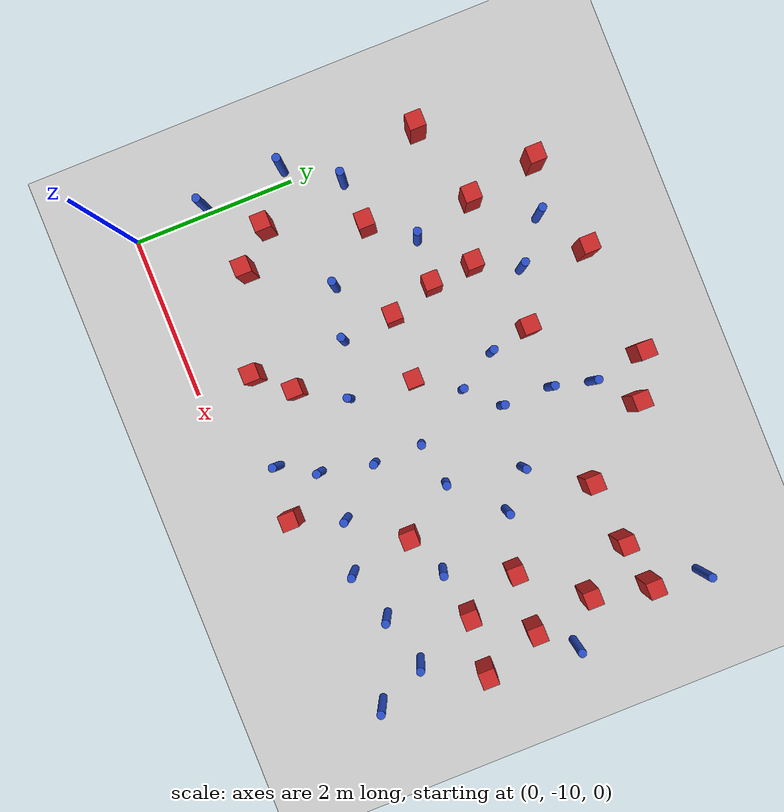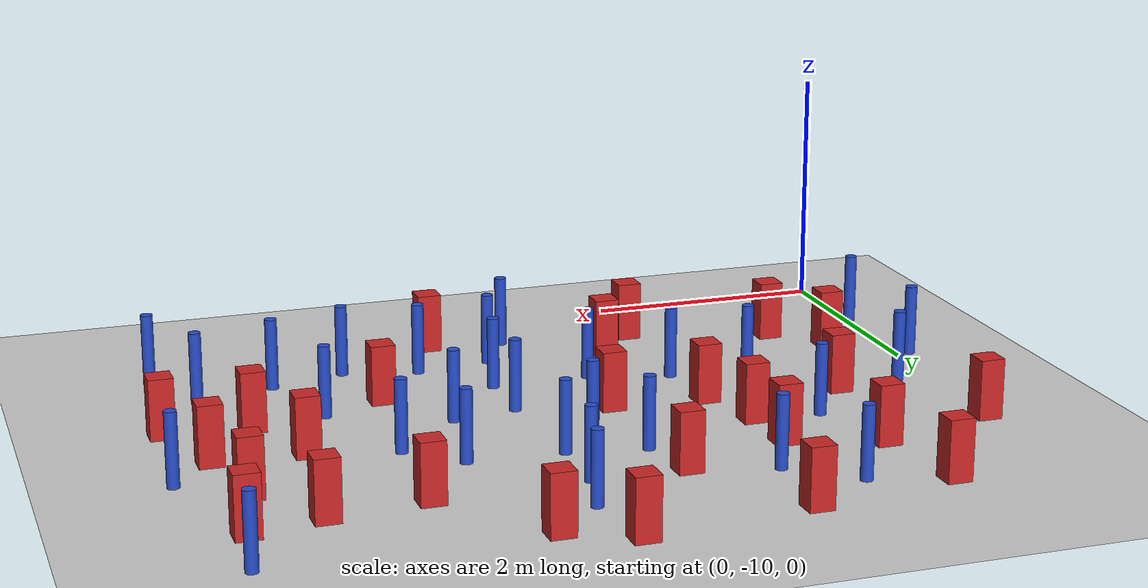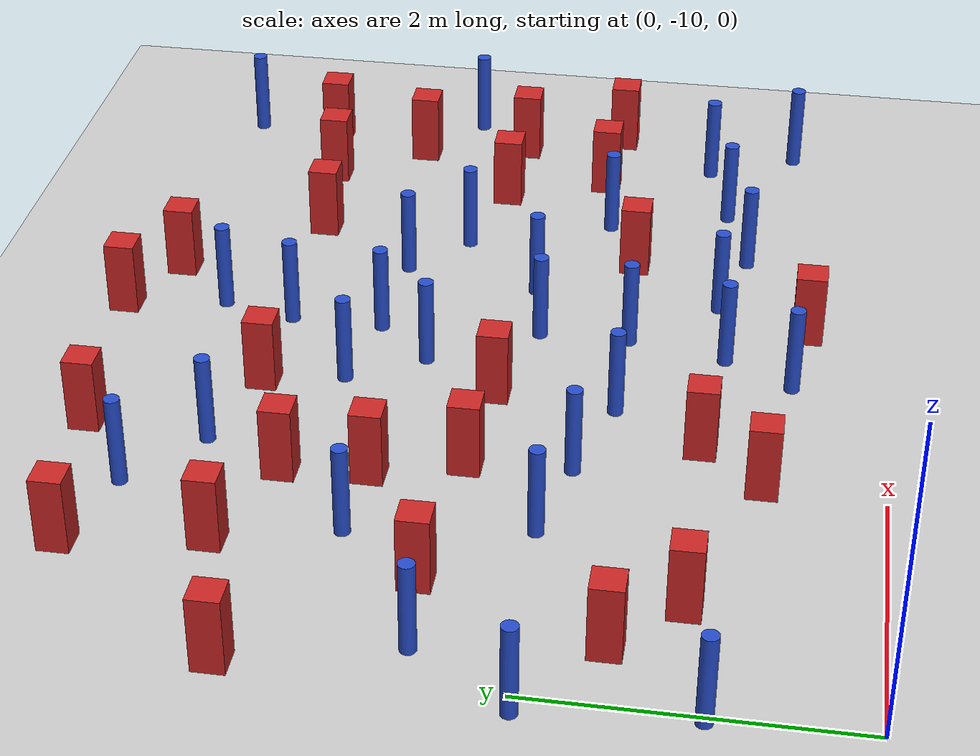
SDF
<sdf version="1.6">
 <world name="default">
  <model name="ground_plane">
   <static>1</static>
   <link name="link">
    <collision name="collision">
     <geometry><plane><normal>0 0 1</normal><size>100 100</size></plane></geometry>
     <surface><friction><ode><mu>100</mu><mu2>50</mu2></ode></friction></surface>
    </collision>
    <visual name="visual">
     <cast_shadows>0</cast_shadows>
     <geometry><plane><normal>0 0 1</normal><size>100 100</size></plane></geometry>
     <material>
      <ambient>1.0 1.0 1.0 1.0</ambient>
      <diffuse>0.8 0.8 0.8 1.0</diffuse>
      <specular>0.01 0.01 0.01 1.000000</specular>
     </material>
    </visual>
   </link>
  </model>
  <model name="pole_obstacle1">
   <static>true</static>
   <pose>4.07236167982 -7.60996709356 -3.09024884793e-07 -7.19054271911e-07 -2.1131507516e-07 -1.93935509277e-07</pose>
   <link name="link">
    <pose>0 0 0.3 0 -0 0</pose>
    <inertial>
     <mass>1</mass>
     <inertia><ixx>0.145833</ixx><ixy>0</ixy><ixz>0</ixz><iyy>0.145833</iyy><iyz>0</iyz><izz>0.125</izz></inertia>
    </inertial>
    <collision name="collision">
     <geometry><cylinder><radius>0.05</radius><length>.6</length></cylinder></geometry>
    </collision>
    <visual name="visual">
     <geometry><cylinder><radius>0.05</radius><length>.6</length></cylinder></geometry>
     <material>
      <script><name>Gazebo/Blue</name><uri>file://media/materials/scripts/gazebo.material</uri></script>
     </material>
    </visual>
   </link>
  </model>
  <model name="square_post_obstacle1">
   <static>true</static>
   <pose>5.92085016042 -6.52484385596 -4.36207812815e-07 3.75137919937e-06 9.77721102514e-07 2.47381364184e-05</pose>
   <link name="link">
    <pose>0 0 0.25 0 -0 0</pose>
    <inertial>
     <mass>100</mass>
     <inertia>
      <ixx>0.166667</ixx>
      <ixy>0</ixy>
      <ixz>0</ixz>
      <iyy>0.166667</iyy>
      <iyz>0</iyz>
      <izz>0.166667</izz>
     </inertia>
    </inertial>
    <collision name="collision"><geometry><box><size>.2 .2 .5</size></box></geometry></collision>
    <visual name="visual">
     <geometry><box><size>.2 .2 .5</size></box></geometry>
     <material>
      <script><name>Gazebo/Red</name><uri>file://media/materials/scripts/gazebo.material</uri></script>
     </material>
    </visual>
   </link>
  </model>
  <model name="square_post_obstacle10">
   <static>true</static>
   <pose>5.62573239196 -7.92361459516 -4.36207812815e-07 3.75137919937e-06 9.77721102514e-07 2.47381364184e-05</pose>
   <link name="link">
    <pose>0 0 0.25 0 -0 0</pose>
    <inertial>
     <mass>100</mass>
     <inertia>
      <ixx>0.166667</ixx>
      <ixy>0</ixy>
      <ixz>0</ixz>
      <iyy>0.166667</iyy>
      <iyz>0</iyz>
      <izz>0.166667</izz>
     </inertia>
    </inertial>
    <collision name="collision"><geometry><box><size>.2 .2 .5</size></box></geometry></collision>
    <visual name="visual">
     <geometry><box><size>.2 .2 .5</size></box></geometry>
     <material>
      <script><name>Gazebo/Red</name><uri>file://media/materials/scripts/gazebo.material</uri></script>
     </material>
    </visual>
   </link>
  </model>
  <model name="pole_obstacle16">
   <static>true</static>
   <pose>1.25238944474 -6.84796622527 -3.09024884793e-07 -7.19054271912e-07 -2.11315075134e-07 -1.93935509265e-07</pose>
   <link name="link">
    <pose>0 0 0.3 0 -0 0</pose>
    <inertial>
     <mass>1</mass>
     <inertia><ixx>0.145833</ixx><ixy>0</ixy><ixz>0</ixz><iyy>0.145833</iyy><iyz>0</iyz><izz>0.125</izz></inertia>
    </inertial>
    <collision name="collision">
     <geometry><cylinder><radius>0.05</radius><length>.6</length></cylinder></geometry>
    </collision>
    <visual name="visual">
     <geometry><cylinder><radius>0.05</radius><length>.6</length></cylinder></geometry>
     <material>
      <script><name>Gazebo/Blue</name><uri>file://media/materials/scripts/gazebo.material</uri></script>
     </material>
    </visual>
   </link>
  </model>
  <model name="pole_obstacle26">
   <static>true</static>
   <pose>1.41979957354 -7.96618892146 -3.09024884793e-07 -7.19054271912e-07 -2.11315075145e-07 -1.9393550927e-07</pose>
   <link name="link">
    <pose>0 0 0.3 0 -0 0</pose>
    <inertial>
     <mass>1</mass>
     <inertia><ixx>0.145833</ixx><ixy>0</ixy><ixz>0</ixz><iyy>0.145833</iyy><iyz>0</iyz><izz>0.125</izz></inertia>
    </inertial>
    <collision name="collision">
     <geometry><cylinder><radius>0.05</radius><length>.6</length></cylinder></geometry>
    </collision>
    <visual name="visual">
     <geometry><cylinder><radius>0.05</radius><length>.6</length></cylinder></geometry>
     <material>
      <script><name>Gazebo/Blue</name><uri>file://media/materials/scripts/gazebo.material</uri></script>
     </material>
    </visual>
   </link>
  </model>
  <model name="square_post_obstacle21">
   <static>true</static>
   <pose>0.453785921424 -8.48152382366 -4.36207812815e-07 3.75137919937e-06 9.77721102514e-07 2.47381364184e-05</pose>
   <link name="link">
    <pose>0 0 0.25 0 -0 0</pose>
    <inertial>
     <mass>100</mass>
     <inertia>
      <ixx>0.166667</ixx>
      <ixy>0</ixy>
      <ixz>0</ixz>
      <iyy>0.166667</iyy>
      <iyz>0</iyz>
      <izz>0.166667</izz>
     </inertia>
    </inertial>
    <collision name="collision"><geometry><box><size>.2 .2 .5</size></box></geometry></collision>
    <visual name="visual">
     <geometry><box><size>.2 .2 .5</size></box></geometry>
     <material>
      <script><name>Gazebo/Red</name><uri>file://media/materials/scripts/gazebo.material</uri></script>
     </material>
    </visual>
   </link>
  </model>
  <model name="pole_obstacle30">
   <static>true</static>
   <pose>3.5400700986 -8.29917284744 -3.09024884848e-07 -7.19054271902e-07 -2.11315075199e-07 -1.93935509286e-07</pose>
   <link name="link">
    <pose>0 0 0.3 0 -0 0</pose>
    <inertial>
     <mass>1</mass>
     <inertia><ixx>0.145833</ixx><ixy>0</ixy><ixz>0</ixz><iyy>0.145833</iyy><iyz>0</iyz><izz>0.125</izz></inertia>
    </inertial>
    <collision name="collision">
     <geometry><cylinder><radius>0.05</radius><length>.6</length></cylinder></geometry>
    </collision>
    <visual name="visual">
     <geometry><cylinder><radius>0.05</radius><length>.6</length></cylinder></geometry>
     <material>
      <script><name>Gazebo/Blue</name><uri>file://media/materials/scripts/gazebo.material</uri></script>
     </material>
    </visual>
   </link>
  </model>
  <model name="square_post_obstacle27">
   <static>true</static>
   <pose>6.07631170393 -7.27511458548 -4.36207812815e-07 3.75137919937e-06 9.77721102514e-07 2.47381364184e-05</pose>
   <link name="link">
    <pose>0 0 0.25 0 -0 0</pose>
    <inertial>
     <mass>100</mass>
     <inertia>
      <ixx>0.166667</ixx>
      <ixy>0</ixy>
      <ixz>0</ixz>
      <iyy>0.166667</iyy>
      <iyz>0</iyz>
      <izz>0.166667</izz>
     </inertia>
    </inertial>
    <collision name="collision"><geometry><box><size>.2 .2 .5</size></box></geometry></collision>
    <visual name="visual">
     <geometry><box><size>.2 .2 .5</size></box></geometry>
     <material>
      <script><name>Gazebo/Red</name><uri>file://media/materials/scripts/gazebo.material</uri></script>
     </material>
    </visual>
   </link>
  </model>
  <model name="pole_obstacle33">
   <static>true</static>
   <pose>2.72047921915 -8.29536305669 -3.09024884848e-07 -7.19054271902e-07 -2.11315075199e-07 -1.93935509286e-07</pose>
   <link name="link">
    <pose>0 0 0.3 0 -0 0</pose>
    <inertial>
     <mass>1</mass>
     <inertia><ixx>0.145833</ixx><ixy>0</ixy><ixz>0</ixz><iyy>0.145833</iyy><iyz>0</iyz><izz>0.125</izz></inertia>
    </inertial>
    <collision name="collision">
     <geometry><cylinder><radius>0.05</radius><length>.6</length></cylinder></geometry>
    </collision>
    <visual name="visual">
     <geometry><cylinder><radius>0.05</radius><length>.6</length></cylinder></geometry>
     <material>
      <script><name>Gazebo/Blue</name><uri>file://media/materials/scripts/gazebo.material</uri></script>
     </material>
    </visual>
   </link>
  </model>
  <model name="pole_obstacle48">
   <static>true</static>
   <pose>0.290148345663 -7.41750227687 -3.09024884793e-07 -7.19054271912e-07 -2.11315075127e-07 -1.9393550926e-07</pose>
   <link name="link">
    <pose>0 0 0.3 0 -0 0</pose>
    <inertial>
     <mass>1</mass>
     <inertia><ixx>0.145833</ixx><ixy>0</ixy><ixz>0</ixz><iyy>0.145833</iyy><iyz>0</iyz><izz>0.125</izz></inertia>
    </inertial>
    <collision name="collision">
     <geometry><cylinder><radius>0.05</radius><length>.6</length></cylinder></geometry>
    </collision>
    <visual name="visual">
     <geometry><cylinder><radius>0.05</radius><length>.6</length></cylinder></geometry>
     <material>
      <script><name>Gazebo/Blue</name><uri>file://media/materials/scripts/gazebo.material</uri></script>
     </material>
    </visual>
   </link>
  </model>
  <model name="square_post_obstacle38">
   <static>true</static>
   <pose>4.0068190021 -5.15003633748 -4.36207812815e-07 3.75137919937e-06 9.77721102514e-07 2.47381364184e-05</pose>
   <link name="link">
    <pose>0 0 0.25 0 -0 0</pose>
    <inertial>
     <mass>100</mass>
     <inertia>
      <ixx>0.166667</ixx>
      <ixy>0</ixy>
      <ixz>0</ixz>
      <iyy>0.166667</iyy>
      <iyz>0</iyz>
      <izz>0.166667</izz>
     </inertia>
    </inertial>
    <collision name="collision"><geometry><box><size>.2 .2 .5</size></box></geometry></collision>
    <visual name="visual">
     <geometry><box><size>.2 .2 .5</size></box></geometry>
     <material>
      <script><name>Gazebo/Red</name><uri>file://media/materials/scripts/gazebo.material</uri></script>
     </material>
    </visual>
   </link>
  </model>
  <model name="pole_obstacle54">
   <static>true</static>
   <pose>5.27710868921 -8.84113022269 -3.09024884793e-07 -7.19054271912e-07 -2.1131507513e-07 -1.93935509261e-07</pose>
   <link name="link">
    <pose>0 0 0.3 0 -0 0</pose>
    <inertial>
     <mass>1</mass>
     <inertia><ixx>0.145833</ixx><ixy>0</ixy><ixz>0</ixz><iyy>0.145833</iyy><iyz>0</iyz><izz>0.125</izz></inertia>
    </inertial>
    <collision name="collision">
     <geometry><cylinder><radius>0.05</radius><length>.6</length></cylinder></geometry>
    </collision>
    <visual name="visual">
     <geometry><cylinder><radius>0.05</radius><length>.6</length></cylinder></geometry>
     <material>
      <script><name>Gazebo/Blue</name><uri>file://media/materials/scripts/gazebo.material</uri></script>
     </material>
    </visual>
   </link>
  </model>
  <model name="pole_obstacle58">
   <static>true</static>
   <pose>2.03165217298 -5.83200984251 -3.09024884793e-07 -7.19054271912e-07 -2.11315075136e-07 -1.93935509266e-07</pose>
   <link name="link">
    <pose>0 0 0.3 0 -0 0</pose>
    <inertial>
     <mass>1</mass>
     <inertia><ixx>0.145833</ixx><ixy>0</ixy><ixz>0</ixz><iyy>0.145833</iyy><iyz>0</iyz><izz>0.125</izz></inertia>
    </inertial>
    <collision name="collision">
     <geometry><cylinder><radius>0.05</radius><length>.6</length></cylinder></geometry>
    </collision>
    <visual name="visual">
     <geometry><cylinder><radius>0.05</radius><length>.6</length></cylinder></geometry>
     <material>
      <script><name>Gazebo/Blue</name><uri>file://media/materials/scripts/gazebo.material</uri></script>
     </material>
    </visual>
   </link>
  </model>
  <model name="square_post_obstacle46">
   <static>true</static>
   <pose>4.50490075316 -8.24448174839 -4.36207812815e-07 3.75137919937e-06 9.77721102514e-07 2.47381364184e-05</pose>
   <link name="link">
    <pose>0 0 0.25 0 -0 0</pose>
    <inertial>
     <mass>100</mass>
     <inertia>
      <ixx>0.166667</ixx>
      <ixy>0</ixy>
      <ixz>0</ixz>
      <iyy>0.166667</iyy>
      <iyz>0</iyz>
      <izz>0.166667</izz>
     </inertia>
    </inertial>
    <collision name="collision"><geometry><box><size>.2 .2 .5</size></box></geometry></collision>
    <visual name="visual">
     <geometry><box><size>.2 .2 .5</size></box></geometry>
     <material>
      <script><name>Gazebo/Red</name><uri>file://media/materials/scripts/gazebo.material</uri></script>
     </material>
    </visual>
   </link>
  </model>
  <model name="pole_obstacle66">
   <static>true</static>
   <pose>5.01758868013 -8.02447700649 -3.09024884793e-07 -7.19054271911e-07 -2.11315075165e-07 -1.93935509282e-07</pose>
   <link name="link">
    <pose>0 0 0.3 0 -0 0</pose>
    <inertial>
     <mass>1</mass>
     <inertia><ixx>0.145833</ixx><ixy>0</ixy><ixz>0</ixz><iyy>0.145833</iyy><iyz>0</iyz><izz>0.125</izz></inertia>
    </inertial>
    <collision name="collision">
     <geometry><cylinder><radius>0.05</radius><length>.6</length></cylinder></geometry>
    </collision>
    <visual name="visual">
     <geometry><cylinder><radius>0.05</radius><length>.6</length></cylinder></geometry>
     <material>
      <script><name>Gazebo/Blue</name><uri>file://media/materials/scripts/gazebo.material</uri></script>
     </material>
    </visual>
   </link>
  </model>
  <model name="square_post_obstacle58">
   <static>true</static>
   <pose>5.4955206383 -5.91782585349 -4.36207812815e-07 3.75137919937e-06 9.77721102514e-07 2.47381364184e-05</pose>
   <link name="link">
    <pose>0 0 0.25 0 -0 0</pose>
    <inertial>
     <mass>100</mass>
     <inertia>
      <ixx>0.166667</ixx>
      <ixy>0</ixy>
      <ixz>0</ixz>
      <iyy>0.166667</iyy>
      <iyz>0</iyz>
      <izz>0.166667</izz>
     </inertia>
    </inertial>
    <collision name="collision"><geometry><box><size>.2 .2 .5</size></box></geometry></collision>
    <visual name="visual">
     <geometry><box><size>.2 .2 .5</size></box></geometry>
     <material>
      <script><name>Gazebo/Red</name><uri>file://media/materials/scripts/gazebo.material</uri></script>
     </material>
    </visual>
   </link>
  </model>
  <model name="square_post_obstacle60">
   <static>true</static>
   <pose>1.77459397699 -6.35679622717 -4.36207812815e-07 3.75137919937e-06 9.77721102514e-07 2.47381364184e-05</pose>
   <link name="link">
    <pose>0 0 0.25 0 -0 0</pose>
    <inertial>
     <mass>100</mass>
     <inertia>
      <ixx>0.166667</ixx>
      <ixy>0</ixy>
      <ixz>0</ixz>
      <iyy>0.166667</iyy>
      <iyz>0</iyz>
      <izz>0.166667</izz>
     </inertia>
    </inertial>
    <collision name="collision"><geometry><box><size>.2 .2 .5</size></box></geometry></collision>
    <visual name="visual">
     <geometry><box><size>.2 .2 .5</size></box></geometry>
     <material>
      <script><name>Gazebo/Red</name><uri>file://media/materials/scripts/gazebo.material</uri></script>
     </material>
    </visual>
   </link>
  </model>
  <model name="square_post_obstacle61">
   <static>true</static>
   <pose>5.34309120181 -7.23622788586 -4.36207812815e-07 3.75137919937e-06 9.77721102514e-07 2.47381364184e-05</pose>
   <link name="link">
    <pose>0 0 0.25 0 -0 0</pose>
    <inertial>
     <mass>100</mass>
     <inertia>
      <ixx>0.166667</ixx>
      <ixy>0</ixy>
      <ixz>0</ixz>
      <iyy>0.166667</iyy>
      <iyz>0</iyz>
      <izz>0.166667</izz>
     </inertia>
    </inertial>
    <collision name="collision"><geometry><box><size>.2 .2 .5</size></box></geometry></collision>
    <visual name="visual">
     <geometry><box><size>.2 .2 .5</size></box></geometry>
     <material>
      <script><name>Gazebo/Red</name><uri>file://media/materials/scripts/gazebo.material</uri></script>
     </material>
    </visual>
   </link>
  </model>
  <model name="pole_obstacle71">
   <static>true</static>
   <pose>2.05240062635 -8.10532833255 -3.09024884848e-07 -7.19054271902e-07 -2.11315075199e-07 -1.93935509286e-07</pose>
   <link name="link">
    <pose>0 0 0.3 0 -0 0</pose>
    <inertial>
     <mass>1</mass>
     <inertia><ixx>0.145833</ixx><ixy>0</ixy><ixz>0</ixz><iyy>0.145833</iyy><iyz>0</iyz><izz>0.125</izz></inertia>
    </inertial>
    <collision name="collision">
     <geometry><cylinder><radius>0.05</radius><length>.6</length></cylinder></geometry>
    </collision>
    <visual name="visual">
     <geometry><cylinder><radius>0.05</radius><length>.6</length></cylinder></geometry>
     <material>
      <script><name>Gazebo/Blue</name><uri>file://media/materials/scripts/gazebo.material</uri></script>
     </material>
    </visual>
   </link>
  </model>
  <model name="pole_obstacle76">
   <static>true</static>
   <pose>6.41805864208 -6.88185859831 -3.09024884793e-07 -7.19054271911e-07 -2.1131507516e-07 -1.93935509277e-07</pose>
   <link name="link">
    <pose>0 0 0.3 0 -0 0</pose>
    <inertial>
     <mass>1</mass>
     <inertia><ixx>0.145833</ixx><ixy>0</ixy><ixz>0</ixz><iyy>0.145833</iyy><iyz>0</iyz><izz>0.125</izz></inertia>
    </inertial>
    <collision name="collision">
     <geometry><cylinder><radius>0.05</radius><length>.6</length></cylinder></geometry>
    </collision>
    <visual name="visual">
     <geometry><cylinder><radius>0.05</radius><length>.6</length></cylinder></geometry>
     <material>
      <script><name>Gazebo/Blue</name><uri>file://media/materials/scripts/gazebo.material</uri></script>
     </material>
    </visual>
   </link>
  </model>
  <model name="square_post_obstacle71">
   <static>true</static>
   <pose>2.09622969904 -5.04232906579 -4.36207812815e-07 3.75137919937e-06 9.77721102514e-07 2.47381364184e-05</pose>
   <link name="link">
    <pose>0 0 0.25 0 -0 0</pose>
    <inertial>
     <mass>100</mass>
     <inertia>
      <ixx>0.166667</ixx>
      <ixy>0</ixy>
      <ixz>0</ixz>
      <iyy>0.166667</iyy>
      <iyz>0</iyz>
      <izz>0.166667</izz>
     </inertia>
    </inertial>
    <collision name="collision"><geometry><box><size>.2 .2 .5</size></box></geometry></collision>
    <visual name="visual">
     <geometry><box><size>.2 .2 .5</size></box></geometry>
     <material>
      <script><name>Gazebo/Red</name><uri>file://media/materials/scripts/gazebo.material</uri></script>
     </material>
    </visual>
   </link>
  </model>
  <model name="pole_obstacle87">
   <static>true</static>
   <pose>1.52635843563 -5.4189483162 -3.09024884793e-07 -7.19054271912e-07 -2.11315075134e-07 -1.93935509265e-07</pose>
   <link name="link">
    <pose>0 0 0.3 0 -0 0</pose>
    <inertial>
     <mass>1</mass>
     <inertia><ixx>0.145833</ixx><ixy>0</ixy><ixz>0</ixz><iyy>0.145833</iyy><iyz>0</iyz><izz>0.125</izz></inertia>
    </inertial>
    <collision name="collision">
     <geometry><cylinder><radius>0.05</radius><length>.6</length></cylinder></geometry>
    </collision>
    <visual name="visual">
     <geometry><cylinder><radius>0.05</radius><length>.6</length></cylinder></geometry>
     <material>
      <script><name>Gazebo/Blue</name><uri>file://media/materials/scripts/gazebo.material</uri></script>
     </material>
    </visual>
   </link>
  </model>
  <model name="pole_obstacle90">
   <static>true</static>
   <pose>4.64386536042 -7.0594242343 -3.09024884793e-07 -7.19054271911e-07 -2.1131507516e-07 -1.93935509277e-07</pose>
   <link name="link">
    <pose>0 0 0.3 0 -0 0</pose>
    <inertial>
     <mass>1</mass>
     <inertia><ixx>0.145833</ixx><ixy>0</ixy><ixz>0</ixz><iyy>0.145833</iyy><iyz>0</iyz><izz>0.125</izz></inertia>
    </inertial>
    <collision name="collision">
     <geometry><cylinder><radius>0.05</radius><length>.6</length></cylinder></geometry>
    </collision>
    <visual name="visual">
     <geometry><cylinder><radius>0.05</radius><length>.6</length></cylinder></geometry>
     <material>
      <script><name>Gazebo/Blue</name><uri>file://media/materials/scripts/gazebo.material</uri></script>
     </material>
    </visual>
   </link>
  </model>
  <model name="square_post_obstacle86">
   <static>true</static>
   <pose>2.03636966007 -9.2489738448 -4.36207812815e-07 3.75137919937e-06 9.77721102514e-07 2.47381364184e-05</pose>
   <link name="link">
    <pose>0 0 0.25 0 -0 0</pose>
    <inertial>
     <mass>100</mass>
     <inertia>
      <ixx>0.166667</ixx>
      <ixy>0</ixy>
      <ixz>0</ixz>
      <iyy>0.166667</iyy>
      <iyz>0</iyz>
      <izz>0.166667</izz>
     </inertia>
    </inertial>
    <collision name="collision"><geometry><box><size>.2 .2 .5</size></box></geometry></collision>
    <visual name="visual">
     <geometry><box><size>.2 .2 .5</size></box></geometry>
     <material>
      <script><name>Gazebo/Red</name><uri>file://media/materials/scripts/gazebo.material</uri></script>
     </material>
    </visual>
   </link>
  </model>
  <model name="pole_obstacle94">
   <static>true</static>
   <pose>3.14695514007 -9.38417017222 -3.09024884848e-07 -7.19054271902e-07 -2.11315075199e-07 -1.93935509286e-07</pose>
   <link name="link">
    <pose>0 0 0.3 0 -0 0</pose>
    <inertial>
     <mass>1</mass>
     <inertia><ixx>0.145833</ixx><ixy>0</ixy><ixz>0</ixz><iyy>0.145833</iyy><iyz>0</iyz><izz>0.125</izz></inertia>
    </inertial>
    <collision name="collision">
     <geometry><cylinder><radius>0.05</radius><length>.6</length></cylinder></geometry>
    </collision>
    <visual name="visual">
     <geometry><cylinder><radius>0.05</radius><length>.6</length></cylinder></geometry>
     <material>
      <script><name>Gazebo/Blue</name><uri>file://media/materials/scripts/gazebo.material</uri></script>
     </material>
    </visual>
   </link>
  </model>
  <model name="square_post_obstacle87">
   <static>true</static>
   <pose>0.898441468223 -5.23451548411 -4.36207812815e-07 3.75137919937e-06 9.77721102514e-07 2.47381364184e-05</pose>
   <link name="link">
    <pose>0 0 0.25 0 -0 0</pose>
    <inertial>
     <mass>100</mass>
     <inertia>
      <ixx>0.166667</ixx>
      <ixy>0</ixy>
      <ixz>0</ixz>
      <iyy>0.166667</iyy>
      <iyz>0</iyz>
      <izz>0.166667</izz>
     </inertia>
    </inertial>
    <collision name="collision"><geometry><box><size>.2 .2 .5</size></box></geometry></collision>
    <visual name="visual">
     <geometry><box><size>.2 .2 .5</size></box></geometry>
     <material>
      <script><name>Gazebo/Red</name><uri>file://media/materials/scripts/gazebo.material</uri></script>
     </material>
    </visual>
   </link>
  </model>
  <model name="square_post_obstacle93">
   <static>true</static>
   <pose>3.78841018463 -9.46230485437 -4.36207812815e-07 3.75137919937e-06 9.77721102514e-07 2.47381364184e-05</pose>
   <link name="link">
    <pose>0 0 0.25 0 -0 0</pose>
    <inertial>
     <mass>100</mass>
     <inertia>
      <ixx>0.166667</ixx>
      <ixy>0</ixy>
      <ixz>0</ixz>
      <iyy>0.166667</iyy>
      <iyz>0</iyz>
      <izz>0.166667</izz>
     </inertia>
    </inertial>
    <collision name="collision"><geometry><box><size>.2 .2 .5</size></box></geometry></collision>
    <visual name="visual">
     <geometry><box><size>.2 .2 .5</size></box></geometry>
     <material>
      <script><name>Gazebo/Red</name><uri>file://media/materials/scripts/gazebo.material</uri></script>
     </material>
    </visual>
   </link>
  </model>
  <model name="square_post_obstacle94">
   <static>true</static>
   <pose>4.70166539826 -6.00847670656 -4.36207812815e-07 3.75137919937e-06 9.77721102514e-07 2.47381364184e-05</pose>
   <link name="link">
    <pose>0 0 0.25 0 -0 0</pose>
    <inertial>
     <mass>100</mass>
     <inertia>
      <ixx>0.166667</ixx>
      <ixy>0</ixy>
      <ixz>0</ixz>
      <iyy>0.166667</iyy>
      <iyz>0</iyz>
      <izz>0.166667</izz>
     </inertia>
    </inertial>
    <collision name="collision"><geometry><box><size>.2 .2 .5</size></box></geometry></collision>
    <visual name="visual">
     <geometry><box><size>.2 .2 .5</size></box></geometry>
     <material>
      <script><name>Gazebo/Red</name><uri>file://media/materials/scripts/gazebo.material</uri></script>
     </material>
    </visual>
   </link>
  </model>
  <model name="pole_obstacle103">
   <static>true</static>
   <pose>4.65061305243 -9.01366671301 -3.09024884793e-07 -7.19054271912e-07 -2.1131507513e-07 -1.93935509261e-07</pose>
   <link name="link">
    <pose>0 0 0.3 0 -0 0</pose>
    <inertial>
     <mass>1</mass>
     <inertia><ixx>0.145833</ixx><ixy>0</ixy><ixz>0</ixz><iyy>0.145833</iyy><iyz>0</iyz><izz>0.125</izz></inertia>
    </inertial>
    <collision name="collision">
     <geometry><cylinder><radius>0.05</radius><length>.6</length></cylinder></geometry>
    </collision>
    <visual name="visual">
     <geometry><cylinder><radius>0.05</radius><length>.6</length></cylinder></geometry>
     <material>
      <script><name>Gazebo/Blue</name><uri>file://media/materials/scripts/gazebo.material</uri></script>
     </material>
    </visual>
   </link>
  </model>
  <model name="pole_obstacle106">
   <static>true</static>
   <pose>3.46866634124 -6.04017774148 -3.09024884793e-07 -7.19054271912e-07 -2.11315075134e-07 -1.93935509266e-07</pose>
   <link name="link">
    <pose>0 0 0.3 0 -0 0</pose>
    <inertial>
     <mass>1</mass>
     <inertia><ixx>0.145833</ixx><ixy>0</ixy><ixz>0</ixz><iyy>0.145833</iyy><iyz>0</iyz><izz>0.125</izz></inertia>
    </inertial>
    <collision name="collision">
     <geometry><cylinder><radius>0.05</radius><length>.6</length></cylinder></geometry>
    </collision>
    <visual name="visual">
     <geometry><cylinder><radius>0.05</radius><length>.6</length></cylinder></geometry>
     <material>
      <script><name>Gazebo/Blue</name><uri>file://media/materials/scripts/gazebo.material</uri></script>
     </material>
    </visual>
   </link>
  </model>
  <model name="square_post_obstacle110">
   <static>true</static>
   <pose>1.04419621376 -6.09527160302 -4.36207812815e-07 3.75137919937e-06 9.77721102514e-07 2.47381364184e-05</pose>
   <link name="link">
    <pose>0 0 0.25 0 -0 0</pose>
    <inertial>
     <mass>100</mass>
     <inertia>
      <ixx>0.166667</ixx>
      <ixy>0</ixy>
      <ixz>0</ixz>
      <iyy>0.166667</iyy>
      <iyz>0</iyz>
      <izz>0.166667</izz>
     </inertia>
    </inertial>
    <collision name="collision"><geometry><box><size>.2 .2 .5</size></box></geometry></collision>
    <visual name="visual">
     <geometry><box><size>.2 .2 .5</size></box></geometry>
     <material>
      <script><name>Gazebo/Red</name><uri>file://media/materials/scripts/gazebo.material</uri></script>
     </material>
    </visual>
   </link>
  </model>
  <model name="pole_obstacle119">
   <static>true</static>
   <pose>4.23467215394 -6.69393452469 -3.09024884793e-07 -7.19054271911e-07 -2.1131507516e-07 -1.93935509277e-07</pose>
   <link name="link">
    <pose>0 0 0.3 0 -0 0</pose>
    <inertial>
     <mass>1</mass>
     <inertia><ixx>0.145833</ixx><ixy>0</ixy><ixz>0</ixz><iyy>0.145833</iyy><iyz>0</iyz><izz>0.125</izz></inertia>
    </inertial>
    <collision name="collision">
     <geometry><cylinder><radius>0.05</radius><length>.6</length></cylinder></geometry>
    </collision>
    <visual name="visual">
     <geometry><cylinder><radius>0.05</radius><length>.6</length></cylinder></geometry>
     <material>
      <script><name>Gazebo/Blue</name><uri>file://media/materials/scripts/gazebo.material</uri></script>
     </material>
    </visual>
   </link>
  </model>
  <model name="pole_obstacle123">
   <static>true</static>
   <pose>3.53438554775 -7.70687536647 -3.09024884793e-07 -7.19054271912e-07 -2.11315075134e-07 -1.93935509266e-07</pose>
   <link name="link">
    <pose>0 0 0.3 0 -0 0</pose>
    <inertial>
     <mass>1</mass>
     <inertia><ixx>0.145833</ixx><ixy>0</ixy><ixz>0</ixz><iyy>0.145833</iyy><iyz>0</iyz><izz>0.125</izz></inertia>
    </inertial>
    <collision name="collision">
     <geometry><cylinder><radius>0.05</radius><length>.6</length></cylinder></geometry>
    </collision>
    <visual name="visual">
     <geometry><cylinder><radius>0.05</radius><length>.6</length></cylinder></geometry>
     <material>
      <script><name>Gazebo/Blue</name><uri>file://media/materials/scripts/gazebo.material</uri></script>
     </material>
    </visual>
   </link>
  </model>
  <model name="square_post_obstacle125">
   <static>true</static>
   <pose>3.47955481679 -4.88890324637 -4.36207812815e-07 3.75137919937e-06 9.77721102514e-07 2.47381364184e-05</pose>
   <link name="link">
    <pose>0 0 0.25 0 -0 0</pose>
    <inertial>
     <mass>100</mass>
     <inertia>
      <ixx>0.166667</ixx>
      <ixy>0</ixy>
      <ixz>0</ixz>
      <iyy>0.166667</iyy>
      <iyz>0</iyz>
      <izz>0.166667</izz>
     </inertia>
    </inertial>
    <collision name="collision"><geometry><box><size>.2 .2 .5</size></box></geometry></collision>
    <visual name="visual">
     <geometry><box><size>.2 .2 .5</size></box></geometry>
     <material>
      <script><name>Gazebo/Red</name><uri>file://media/materials/scripts/gazebo.material</uri></script>
     </material>
    </visual>
   </link>
  </model>
  <model name="pole_obstacle144">
   <static>true</static>
   <pose>2.82762886936 -6.53428870631 -3.09024884793e-07 -7.19054271912e-07 -2.11315075134e-07 -1.93935509266e-07</pose>
   <link name="link">
    <pose>0 0 0.3 0 -0 0</pose>
    <inertial>
     <mass>1</mass>
     <inertia><ixx>0.145833</ixx><ixy>0</ixy><ixz>0</ixz><iyy>0.145833</iyy><iyz>0</iyz><izz>0.125</izz></inertia>
    </inertial>
    <collision name="collision">
     <geometry><cylinder><radius>0.05</radius><length>.6</length></cylinder></geometry>
    </collision>
    <visual name="visual">
     <geometry><cylinder><radius>0.05</radius><length>.6</length></cylinder></geometry>
     <material>
      <script><name>Gazebo/Blue</name><uri>file://media/materials/scripts/gazebo.material</uri></script>
     </material>
    </visual>
   </link>
  </model>
  <model name="pole_obstacle147">
   <static>true</static>
   <pose>6.2217749969 -9.27561619663 -3.09024884793e-07 -7.19054271912e-07 -2.1131507513e-07 -1.93935509261e-07</pose>
   <link name="link">
    <pose>0 0 0.3 0 -0 0</pose>
    <inertial>
     <mass>1</mass>
     <inertia><ixx>0.145833</ixx><ixy>0</ixy><ixz>0</ixz><iyy>0.145833</iyy><iyz>0</iyz><izz>0.125</izz></inertia>
    </inertial>
    <collision name="collision">
     <geometry><cylinder><radius>0.05</radius><length>.6</length></cylinder></geometry>
    </collision>
    <visual name="visual">
     <geometry><cylinder><radius>0.05</radius><length>.6</length></cylinder></geometry>
     <material>
      <script><name>Gazebo/Blue</name><uri>file://media/materials/scripts/gazebo.material</uri></script>
     </material>
    </visual>
   </link>
  </model>
  <model name="square_post_obstacle144">
   <static>true</static>
   <pose>1.81848255581 -6.89604105938 -4.36207812815e-07 3.75137919937e-06 9.77721102514e-07 2.47381364184e-05</pose>
   <link name="link">
    <pose>0 0 0.25 0 -0 0</pose>
    <inertial>
     <mass>100</mass>
     <inertia>
      <ixx>0.166667</ixx>
      <ixy>0</ixy>
      <ixz>0</ixz>
      <iyy>0.166667</iyy>
      <iyz>0</iyz>
      <izz>0.166667</izz>
     </inertia>
    </inertial>
    <collision name="collision"><geometry><box><size>.2 .2 .5</size></box></geometry></collision>
    <visual name="visual">
     <geometry><box><size>.2 .2 .5</size></box></geometry>
     <material>
      <script><name>Gazebo/Red</name><uri>file://media/materials/scripts/gazebo.material</uri></script>
     </material>
    </visual>
   </link>
  </model>
  <model name="square_post_obstacle147">
   <static>true</static>
   <pose>0.0278553778632 -6.38834450168 -4.36207812815e-07 3.75137919937e-06 9.77721102514e-07 2.47381364184e-05</pose>
   <link name="link">
    <pose>0 0 0.25 0 -0 0</pose>
    <inertial>
     <mass>100</mass>
     <inertia>
      <ixx>0.166667</ixx>
      <ixy>0</ixy>
      <ixz>0</ixz>
      <iyy>0.166667</iyy>
      <iyz>0</iyz>
      <izz>0.166667</izz>
     </inertia>
    </inertial>
    <collision name="collision"><geometry><box><size>.2 .2 .5</size></box></geometry></collision>
    <visual name="visual">
     <geometry><box><size>.2 .2 .5</size></box></geometry>
     <material>
      <script><name>Gazebo/Red</name><uri>file://media/materials/scripts/gazebo.material</uri></script>
     </material>
    </visual>
   </link>
  </model>
  <model name="pole_obstacle176">
   <static>true</static>
   <pose>-0.0344526016569 -9.05306883899 -3.09024884793e-07 -7.19054271911e-07 -2.11315075161e-07 -1.93935509279e-07</pose>
   <link name="link">
    <pose>0 0 0.3 0 -0 0</pose>
    <inertial>
     <mass>1</mass>
     <inertia><ixx>0.145833</ixx><ixy>0</ixy><ixz>0</ixz><iyy>0.145833</iyy><iyz>0</iyz><izz>0.125</izz></inertia>
    </inertial>
    <collision name="collision">
     <geometry><cylinder><radius>0.05</radius><length>.6</length></cylinder></geometry>
    </collision>
    <visual name="visual">
     <geometry><cylinder><radius>0.05</radius><length>.6</length></cylinder></geometry>
     <material>
      <script><name>Gazebo/Blue</name><uri>file://media/materials/scripts/gazebo.material</uri></script>
     </material>
    </visual>
   </link>
  </model>
  <model name="square_post_obstacle176">
   <static>true</static>
   <pose>0.850773054375 -8.87989505365 -4.36207812815e-07 3.75137919937e-06 9.77721102514e-07 2.47381364184e-05</pose>
   <link name="link">
    <pose>0 0 0.25 0 -0 0</pose>
    <inertial>
     <mass>100</mass>
     <inertia>
      <ixx>0.166667</ixx>
      <ixy>0</ixy>
      <ixz>0</ixz>
      <iyy>0.166667</iyy>
      <iyz>0</iyz>
      <izz>0.166667</izz>
     </inertia>
    </inertial>
    <collision name="collision"><geometry><box><size>.2 .2 .5</size></box></geometry></collision>
    <visual name="visual">
     <geometry><box><size>.2 .2 .5</size></box></geometry>
     <material>
      <script><name>Gazebo/Red</name><uri>file://media/materials/scripts/gazebo.material</uri></script>
     </material>
    </visual>
   </link>
  </model>
  <model name="square_post_obstacle179">
   <static>true</static>
   <pose>2.71130759385 -6.02446464436 -4.36207812815e-07 3.75137919937e-06 9.77721102514e-07 2.47381364184e-05</pose>
   <link name="link">
    <pose>0 0 0.25 0 -0 0</pose>
    <inertial>
     <mass>100</mass>
     <inertia>
      <ixx>0.166667</ixx>
      <ixy>0</ixy>
      <ixz>0</ixz>
      <iyy>0.166667</iyy>
      <iyz>0</iyz>
      <izz>0.166667</izz>
     </inertia>
    </inertial>
    <collision name="collision"><geometry><box><size>.2 .2 .5</size></box></geometry></collision>
    <visual name="visual">
     <geometry><box><size>.2 .2 .5</size></box></geometry>
     <material>
      <script><name>Gazebo/Red</name><uri>file://media/materials/scripts/gazebo.material</uri></script>
     </material>
    </visual>
   </link>
  </model>
  <model name="square_post_obstacle186">
   <static>true</static>
   <pose>6.32999202924 -7.98800168269 -4.36207812815e-07 3.75137919937e-06 9.77721102514e-07 2.47381364184e-05</pose>
   <link name="link">
    <pose>0 0 0.25 0 -0 0</pose>
    <inertial>
     <mass>100</mass>
     <inertia>
      <ixx>0.166667</ixx>
      <ixy>0</ixy>
      <ixz>0</ixz>
      <iyy>0.166667</iyy>
      <iyz>0</iyz>
      <izz>0.166667</izz>
     </inertia>
    </inertial>
    <collision name="collision"><geometry><box><size>.2 .2 .5</size></box></geometry></collision>
    <visual name="visual">
     <geometry><box><size>.2 .2 .5</size></box></geometry>
     <material>
      <script><name>Gazebo/Red</name><uri>file://media/materials/scripts/gazebo.material</uri></script>
     </material>
    </visual>
   </link>
  </model>
  <model name="square_post_obstacle190">
   <static>true</static>
   <pose>0.868664902589 -7.35698492018 -4.36207812815e-07 3.75137919937e-06 9.77721102514e-07 2.47381364184e-05</pose>
   <link name="link">
    <pose>0 0 0.25 0 -0 0</pose>
    <inertial>
     <mass>100</mass>
     <inertia>
      <ixx>0.166667</ixx>
      <ixy>0</ixy>
      <ixz>0</ixz>
      <iyy>0.166667</iyy>
      <iyz>0</iyz>
      <izz>0.166667</izz>
     </inertia>
    </inertial>
    <collision name="collision"><geometry><box><size>.2 .2 .5</size></box></geometry></collision>
    <visual name="visual">
     <geometry><box><size>.2 .2 .5</size></box></geometry>
     <material>
      <script><name>Gazebo/Red</name><uri>file://media/materials/scripts/gazebo.material</uri></script>
     </material>
    </visual>
   </link>
  </model>
  <model name="square_post_obstacle199">
   <static>true</static>
   <pose>2.38236918287 -8.85626367343 -4.36207812815e-07 3.75137919937e-06 9.77721102514e-07 2.47381364184e-05</pose>
   <link name="link">
    <pose>0 0 0.25 0 -0 0</pose>
    <inertial>
     <mass>100</mass>
     <inertia>
      <ixx>0.166667</ixx>
      <ixy>0</ixy>
      <ixz>0</ixz>
      <iyy>0.166667</iyy>
      <iyz>0</iyz>
      <izz>0.166667</izz>
     </inertia>
    </inertial>
    <collision name="collision"><geometry><box><size>.2 .2 .5</size></box></geometry></collision>
    <visual name="visual">
     <geometry><box><size>.2 .2 .5</size></box></geometry>
     <material>
      <script><name>Gazebo/Red</name><uri>file://media/materials/scripts/gazebo.material</uri></script>
     </material>
    </visual>
   </link>
  </model>
  <model name="square_post_obstacle201">
   <static>true</static>
   <pose>2.79088278514 -7.51133891815 -4.36207812815e-07 3.75137919937e-06 9.77721102514e-07 2.47381364184e-05</pose>
   <link name="link">
    <pose>0 0 0.25 0 -0 0</pose>
    <inertial>
     <mass>100</mass>
     <inertia>
      <ixx>0.166667</ixx>
      <ixy>0</ixy>
      <ixz>0</ixz>
      <iyy>0.166667</iyy>
      <iyz>0</iyz>
      <izz>0.166667</izz>
     </inertia>
    </inertial>
    <collision name="collision"><geometry><box><size>.2 .2 .5</size></box></geometry></collision>
    <visual name="visual">
     <geometry><box><size>.2 .2 .5</size></box></geometry>
     <material>
      <script><name>Gazebo/Red</name><uri>file://media/materials/scripts/gazebo.material</uri></script>
     </material>
    </visual>
   </link>
  </model>
  <model name="square_post_obstacle202">
   <static>true</static>
   <pose>6.08499269867 -5.80574542112 -4.36207812815e-07 3.75137919937e-06 9.77721102514e-07 2.47381364184e-05</pose>
   <link name="link">
    <pose>0 0 0.25 0 -0 0</pose>
    <inertial>
     <mass>100</mass>
     <inertia>
      <ixx>0.166667</ixx>
      <ixy>0</ixy>
      <ixz>0</ixz>
      <iyy>0.166667</iyy>
      <iyz>0</iyz>
      <izz>0.166667</izz>
     </inertia>
    </inertial>
    <collision name="collision"><geometry><box><size>.2 .2 .5</size></box></geometry></collision>
    <visual name="visual">
     <geometry><box><size>.2 .2 .5</size></box></geometry>
     <material>
      <script><name>Gazebo/Red</name><uri>file://media/materials/scripts/gazebo.material</uri></script>
     </material>
    </visual>
   </link>
  </model>
  <model name="pole_obstacle193">
   <static>true</static>
   <pose>6.16939845372 -5.18439846018 -3.09024884793e-07 -7.19054271911e-07 -2.1131507516e-07 -1.93935509277e-07</pose>
   <link name="link">
    <pose>0 0 0.3 0 -0 0</pose>
    <inertial>
     <mass>1</mass>
     <inertia><ixx>0.145833</ixx><ixy>0</ixy><ixz>0</ixz><iyy>0.145833</iyy><iyz>0</iyz><izz>0.125</izz></inertia>
    </inertial>
    <collision name="collision">
     <geometry><cylinder><radius>0.05</radius><length>.6</length></cylinder></geometry>
    </collision>
    <visual name="visual">
     <geometry><cylinder><radius>0.05</radius><length>.6</length></cylinder></geometry>
     <material>
      <script><name>Gazebo/Blue</name><uri>file://media/materials/scripts/gazebo.material</uri></script>
     </material>
    </visual>
   </link>
  </model>
  <model name="pole_obstacle196">
   <static>true</static>
   <pose>5.9301395742 -8.67412404569 -3.09024884793e-07 -7.19054271912e-07 -2.1131507513e-07 -1.93935509261e-07</pose>
   <link name="link">
    <pose>0 0 0.3 0 -0 0</pose>
    <inertial>
     <mass>1</mass>
     <inertia><ixx>0.145833</ixx><ixy>0</ixy><ixz>0</ixz><iyy>0.145833</iyy><iyz>0</iyz><izz>0.125</izz></inertia>
    </inertial>
    <collision name="collision">
     <geometry><cylinder><radius>0.05</radius><length>.6</length></cylinder></geometry>
    </collision>
    <visual name="visual">
     <geometry><cylinder><radius>0.05</radius><length>.6</length></cylinder></geometry>
     <material>
      <script><name>Gazebo/Blue</name><uri>file://media/materials/scripts/gazebo.material</uri></script>
     </material>
    </visual>
   </link>
  </model>
  <model name="pole_obstacle198">
   <static>true</static>
   <pose>3.11566588879 -7.016947753 -3.09024884793e-07 -7.19054271912e-07 -2.11315075134e-07 -1.93935509266e-07</pose>
   <link name="link">
    <pose>0 0 0.3 0 -0 0</pose>
    <inertial>
     <mass>1</mass>
     <inertia><ixx>0.145833</ixx><ixy>0</ixy><ixz>0</ixz><iyy>0.145833</iyy><iyz>0</iyz><izz>0.125</izz></inertia>
    </inertial>
    <collision name="collision">
     <geometry><cylinder><radius>0.05</radius><length>.6</length></cylinder></geometry>
    </collision>
    <visual name="visual">
     <geometry><cylinder><radius>0.05</radius><length>.6</length></cylinder></geometry>
     <material>
      <script><name>Gazebo/Blue</name><uri>file://media/materials/scripts/gazebo.material</uri></script>
     </material>
    </visual>
   </link>
  </model>
  <model name="pole_obstacle206">
   <static>true</static>
   <pose>3.58955809771 -5.55184122302 -3.09024884793e-07 -7.19054271912e-07 -2.11315075134e-07 -1.93935509266e-07</pose>
   <link name="link">
    <pose>0 0 0.3 0 -0 0</pose>
    <inertial>
     <mass>1</mass>
     <inertia><ixx>0.145833</ixx><ixy>0</ixy><ixz>0</ixz><iyy>0.145833</iyy><iyz>0</iyz><izz>0.125</izz></inertia>
    </inertial>
    <collision name="collision">
     <geometry><cylinder><radius>0.05</radius><length>.6</length></cylinder></geometry>
    </collision>
    <visual name="visual">
     <geometry><cylinder><radius>0.05</radius><length>.6</length></cylinder></geometry>
     <material>
      <script><name>Gazebo/Blue</name><uri>file://media/materials/scripts/gazebo.material</uri></script>
     </material>
    </visual>
   </link>
  </model>
  <model name="pole_obstacle208">
   <static>true</static>
   <pose>3.39976271822 -8.94234141172 -3.09024884848e-07 -7.19054271902e-07 -2.11315075199e-07 -1.93935509286e-07</pose>
   <link name="link">
    <pose>0 0 0.3 0 -0 0</pose>
    <inertial>
     <mass>1</mass>
     <inertia><ixx>0.145833</ixx><ixy>0</ixy><ixz>0</ixz><iyy>0.145833</iyy><iyz>0</iyz><izz>0.125</izz></inertia>
    </inertial>
    <collision name="collision">
     <geometry><cylinder><radius>0.05</radius><length>.6</length></cylinder></geometry>
    </collision>
    <visual name="visual">
     <geometry><cylinder><radius>0.05</radius><length>.6</length></cylinder></geometry>
     <material>
      <script><name>Gazebo/Blue</name><uri>file://media/materials/scripts/gazebo.material</uri></script>
     </material>
    </visual>
   </link>
  </model>
  <model name="pole_obstacle209">
   <static>true</static>
   <pose>3.46233291526 -6.65198757324 -3.09024884793e-07 -7.19054271912e-07 -2.11315075134e-07 -1.93935509266e-07</pose>
   <link name="link">
    <pose>0 0 0.3 0 -0 0</pose>
    <inertial>
     <mass>1</mass>
     <inertia><ixx>0.145833</ixx><ixy>0</ixy><ixz>0</ixz><iyy>0.145833</iyy><iyz>0</iyz><izz>0.125</izz></inertia>
    </inertial>
    <collision name="collision">
     <geometry><cylinder><radius>0.05</radius><length>.6</length></cylinder></geometry>
    </collision>
    <visual name="visual">
     <geometry><cylinder><radius>0.05</radius><length>.6</length></cylinder></geometry>
     <material>
      <script><name>Gazebo/Blue</name><uri>file://media/materials/scripts/gazebo.material</uri></script>
     </material>
    </visual>
   </link>
  </model>
  <model name="square_post_obstacle214">
   <static>true</static>
   <pose>1.99776746727 -7.45789818503 -4.36207812815e-07 3.75137919937e-06 9.77721102514e-07 2.47381364184e-05</pose>
   <link name="link">
    <pose>0 0 0.25 0 -0 0</pose>
    <inertial>
     <mass>100</mass>
     <inertia>
      <ixx>0.166667</ixx>
      <ixy>0</ixy>
      <ixz>0</ixz>
      <iyy>0.166667</iyy>
      <iyz>0</iyz>
      <izz>0.166667</izz>
     </inertia>
    </inertial>
    <collision name="collision"><geometry><box><size>.2 .2 .5</size></box></geometry></collision>
    <visual name="visual">
     <geometry><box><size>.2 .2 .5</size></box></geometry>
     <material>
      <script><name>Gazebo/Red</name><uri>file://media/materials/scripts/gazebo.material</uri></script>
     </material>
    </visual>
   </link>
  </model>
  <model name="pole_obstacle212">
   <static>true</static>
   <pose>4.03083000976 -8.85863997922 -3.09024884793e-07 -7.19054271912e-07 -2.11315075133e-07 -1.93935509264e-07</pose>
   <link name="link">
    <pose>0 0 0.3 0 -0 0</pose>
    <inertial>
     <mass>1</mass>
     <inertia><ixx>0.145833</ixx><ixy>0</ixy><ixz>0</ixz><iyy>0.145833</iyy><iyz>0</iyz><izz>0.125</izz></inertia>
    </inertial>
    <collision name="collision">
     <geometry><cylinder><radius>0.05</radius><length>.6</length></cylinder></geometry>
    </collision>
    <visual name="visual">
     <geometry><cylinder><radius>0.05</radius><length>.6</length></cylinder></geometry>
     <material>
      <script><name>Gazebo/Blue</name><uri>file://media/materials/scripts/gazebo.material</uri></script>
     </material>
    </visual>
   </link>
  </model>
  <model name="pole_obstacle216">
   <static>true</static>
   <pose>-0.123619990239 -8.03384997922 -3.09024884682e-07 -7.19054271925e-07 -2.11315075088e-07 -1.93935509252e-07</pose>
   <link name="link">
    <pose>0 0 0.3 0 -0 0</pose>
    <inertial>
     <mass>1</mass>
     <inertia><ixx>0.145833</ixx><ixy>0</ixy><ixz>0</ixz><iyy>0.145833</iyy><iyz>0</iyz><izz>0.125</izz></inertia>
    </inertial>
    <collision name="collision">
     <geometry><cylinder><radius>0.05</radius><length>.6</length></cylinder></geometry>
    </collision>
    <visual name="visual">
     <geometry><cylinder><radius>0.05</radius><length>.6</length></cylinder></geometry>
     <material>
      <script><name>Gazebo/Blue</name><uri>file://media/materials/scripts/gazebo.material</uri></script>
     </material>
    </visual>
   </link>
  </model>
 </world>
</sdf>
